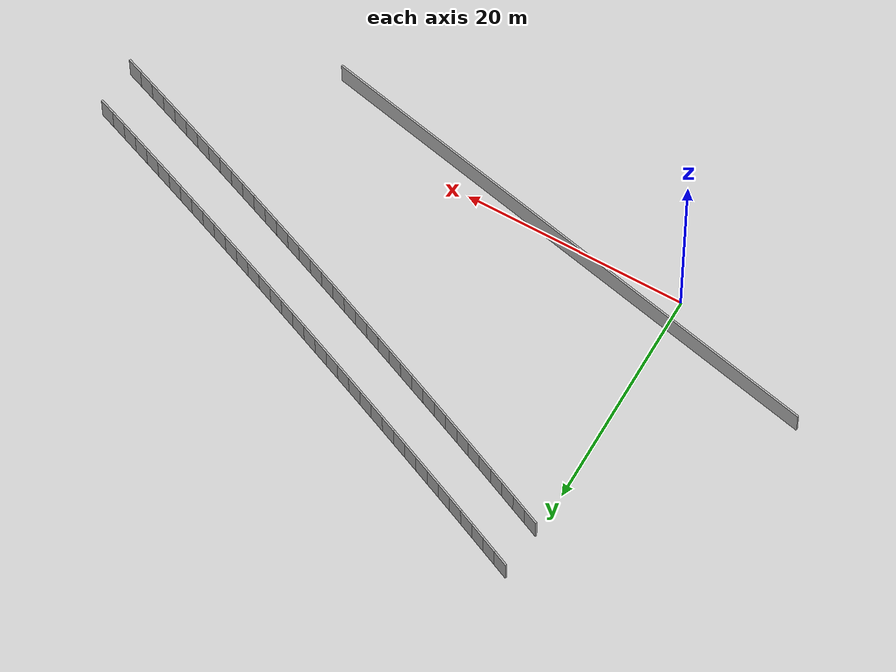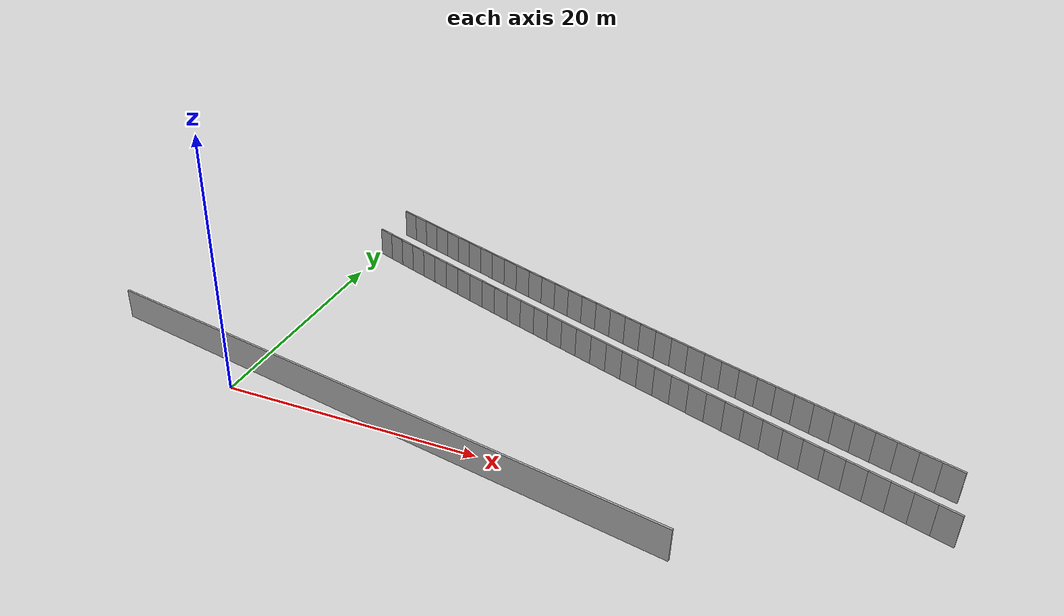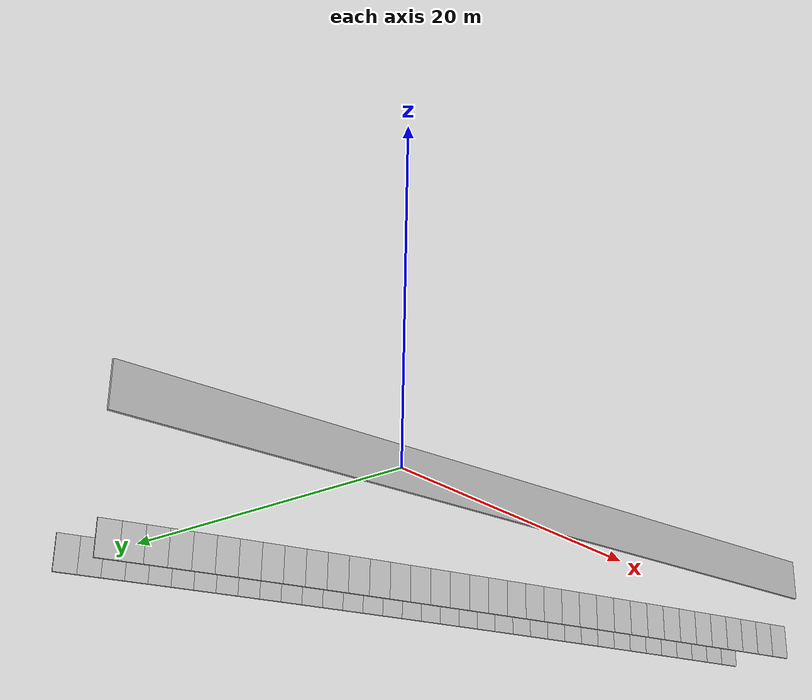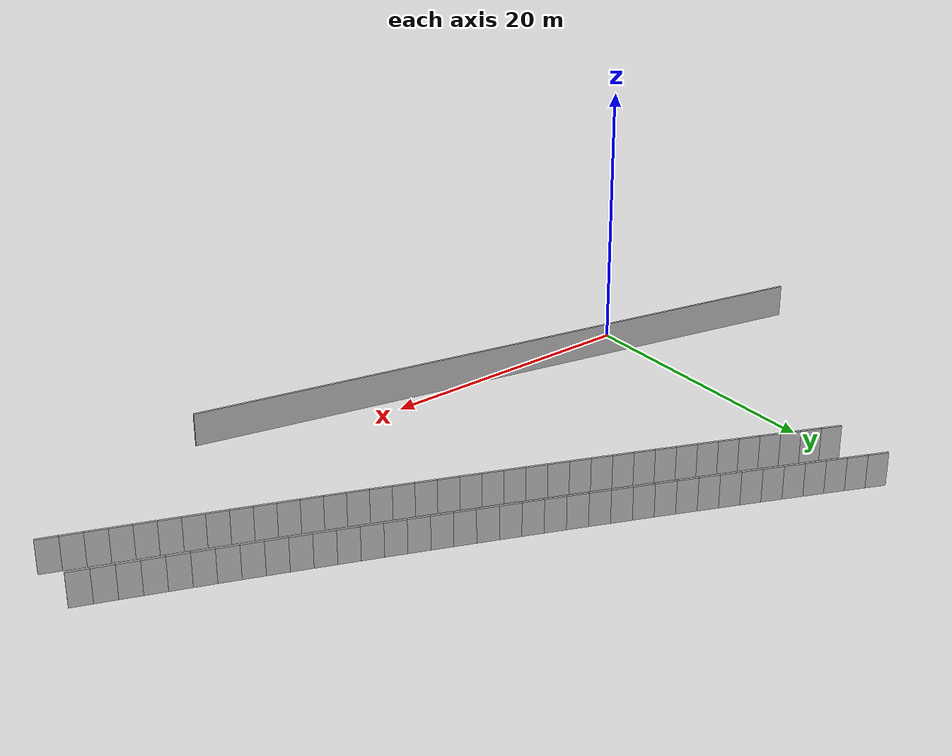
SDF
<?xml version="1.0" ?>
<sdf version="1.6">
  <model name="sps_1505">
    <pose frame="">0 0 0 0 -0 0</pose>
    <static>1</static>
    <self_collide>0</self_collide>
    <allow_auto_disable>0</allow_auto_disable>
    <link name="Wall610">
      <kinematic>0</kinematic>
      <gravity>1</gravity>
      <self_collide>0</self_collide>
      <collision name="collision">
        <geometry>
          <box>
            <size>49.1533 0.15 2.5</size>
          </box>
        </geometry>
        <pose frame="">0 0 0 0 -0 0</pose>
      </collision>
      <visual name="visual">
        <geometry>
          <box>
            <size>49.1533 0.15 2.5</size>
          </box>
        </geometry>
        <pose frame="">0 0 0 0 -0 0</pose>
        <cast_shadows>1</cast_shadows>
        <transparency>0.0</transparency>
      </visual>
      <pose frame="">10.3942 0.540443 1.25 0 -0 2.93924</pose>
    </link>
    <link name="Wall8747">
      <kinematic>0</kinematic>
      <gravity>1</gravity>
      <self_collide>0</self_collide>
      <collision name="collision">
        <geometry>
          <box>
            <size>1.49908 0.15 2.5</size>
          </box>
        </geometry>
        <pose frame="">0 0 0 0 -0 0</pose>
      </collision>
      <visual name="visual">
        <geometry>
          <box>
            <size>1.49908 0.15 2.5</size>
          </box>
        </geometry>
        <pose frame="">0 0 0 0 -0 0</pose>
        <cast_shadows>1</cast_shadows>
        <transparency>0.0</transparency>
      </visual>
      <pose frame="">0.754081 23.8405 1.25 0 0 -0.414702</pose>
    </link>
    <link name="Wall8748">
      <kinematic>0</kinematic>
      <gravity>1</gravity>
      <self_collide>0</self_collide>
      <collision name="collision">
        <geometry>
          <box>
            <size>1.49899 0.15 2.5</size>
          </box>
        </geometry>
        <pose frame="">0 0 0 0 -0 0</pose>
      </collision>
      <visual name="visual">
        <geometry>
          <box>
            <size>1.49899 0.15 2.5</size>
          </box>
        </geometry>
        <pose frame="">0 0 0 0 -0 0</pose>
        <cast_shadows>1</cast_shadows>
        <transparency>0.0</transparency>
      </visual>
      <pose frame="">2.12658 23.2377 1.25 0 0 -0.412949</pose>
    </link>
    <link name="Wall8749">
      <kinematic>0</kinematic>
      <gravity>1</gravity>
      <self_collide>0</self_collide>
      <collision name="collision">
        <geometry>
          <box>
            <size>1.49893 0.15 2.5</size>
          </box>
        </geometry>
        <pose frame="">0 0 0 0 -0 0</pose>
      </collision>
      <visual name="visual">
        <geometry>
          <box>
            <size>1.49893 0.15 2.5</size>
          </box>
        </geometry>
        <pose frame="">0 0 0 0 -0 0</pose>
        <cast_shadows>1</cast_shadows>
        <transparency>0.0</transparency>
      </visual>
      <pose frame="">3.49996 22.6371 1.25 0 0 -0.411543</pose>
    </link>
    <link name="Wall8750">
      <kinematic>0</kinematic>
      <gravity>1</gravity>
      <self_collide>0</self_collide>
      <collision name="collision">
        <geometry>
          <box>
            <size>1.49901 0.15 2.5</size>
          </box>
        </geometry>
        <pose frame="">0 0 0 0 -0 0</pose>
      </collision>
      <visual name="visual">
        <geometry>
          <box>
            <size>1.49901 0.15 2.5</size>
          </box>
        </geometry>
        <pose frame="">0 0 0 0 -0 0</pose>
        <cast_shadows>1</cast_shadows>
        <transparency>0.0</transparency>
      </visual>
      <pose frame="">4.87426 22.0386 1.25 0 0 -0.409923</pose>
    </link>
    <link name="Wall8751">
      <kinematic>0</kinematic>
      <gravity>1</gravity>
      <self_collide>0</self_collide>
      <collision name="collision">
        <geometry>
          <box>
            <size>1.49903 0.15 2.5</size>
          </box>
        </geometry>
        <pose frame="">0 0 0 0 -0 0</pose>
      </collision>
      <visual name="visual">
        <geometry>
          <box>
            <size>1.49903 0.15 2.5</size>
          </box>
        </geometry>
        <pose frame="">0 0 0 0 -0 0</pose>
        <cast_shadows>1</cast_shadows>
        <transparency>0.0</transparency>
      </visual>
      <pose frame="">6.24956 21.4423 1.25 0 0 -0.408319</pose>
    </link>
    <link name="Wall8752">
      <kinematic>0</kinematic>
      <gravity>1</gravity>
      <self_collide>0</self_collide>
      <collision name="collision">
        <geometry>
          <box>
            <size>1.49886 0.15 2.5</size>
          </box>
        </geometry>
        <pose frame="">0 0 0 0 -0 0</pose>
      </collision>
      <visual name="visual">
        <geometry>
          <box>
            <size>1.49886 0.15 2.5</size>
          </box>
        </geometry>
        <pose frame="">0 0 0 0 -0 0</pose>
        <cast_shadows>1</cast_shadows>
        <transparency>0.0</transparency>
      </visual>
      <pose frame="">7.62575 20.8482 1.25 0 0 -0.406726</pose>
    </link>
    <link name="Wall8753">
      <kinematic>0</kinematic>
      <gravity>1</gravity>
      <self_collide>0</self_collide>
      <collision name="collision">
        <geometry>
          <box>
            <size>1.49897 0.15 2.5</size>
          </box>
        </geometry>
        <pose frame="">0 0 0 0 -0 0</pose>
      </collision>
      <visual name="visual">
        <geometry>
          <box>
            <size>1.49897 0.15 2.5</size>
          </box>
        </geometry>
        <pose frame="">0 0 0 0 -0 0</pose>
        <cast_shadows>1</cast_shadows>
        <transparency>0.0</transparency>
      </visual>
      <pose frame="">9.00286 20.2563 1.25 0 0 -0.405143</pose>
    </link>
    <link name="Wall8754">
      <kinematic>0</kinematic>
      <gravity>1</gravity>
      <self_collide>0</self_collide>
      <collision name="collision">
        <geometry>
          <box>
            <size>1.49878 0.15 2.5</size>
          </box>
        </geometry>
        <pose frame="">0 0 0 0 -0 0</pose>
      </collision>
      <visual name="visual">
        <geometry>
          <box>
            <size>1.49878 0.15 2.5</size>
          </box>
        </geometry>
        <pose frame="">0 0 0 0 -0 0</pose>
        <cast_shadows>1</cast_shadows>
        <transparency>0.0</transparency>
      </visual>
      <pose frame="">10.3809 19.6666 1.25 0 0 -0.403603</pose>
    </link>
    <link name="Wall8755">
      <kinematic>0</kinematic>
      <gravity>1</gravity>
      <self_collide>0</self_collide>
      <collision name="collision">
        <geometry>
          <box>
            <size>1.49891 0.15 2.5</size>
          </box>
        </geometry>
        <pose frame="">0 0 0 0 -0 0</pose>
      </collision>
      <visual name="visual">
        <geometry>
          <box>
            <size>1.49891 0.15 2.5</size>
          </box>
        </geometry>
        <pose frame="">0 0 0 0 -0 0</pose>
        <cast_shadows>1</cast_shadows>
        <transparency>0.0</transparency>
      </visual>
      <pose frame="">11.7598 19.0791 1.25 0 0 -0.40193</pose>
    </link>
    <link name="Wall8756">
      <kinematic>0</kinematic>
      <gravity>1</gravity>
      <self_collide>0</self_collide>
      <collision name="collision">
        <geometry>
          <box>
            <size>1.49899 0.15 2.5</size>
          </box>
        </geometry>
        <pose frame="">0 0 0 0 -0 0</pose>
      </collision>
      <visual name="visual">
        <geometry>
          <box>
            <size>1.49899 0.15 2.5</size>
          </box>
        </geometry>
        <pose frame="">0 0 0 0 -0 0</pose>
        <cast_shadows>1</cast_shadows>
        <transparency>0.0</transparency>
      </visual>
      <pose frame="">13.1397 18.4937 1.25 0 0 -0.400492</pose>
    </link>
    <link name="Wall8757">
      <kinematic>0</kinematic>
      <gravity>1</gravity>
      <self_collide>0</self_collide>
      <collision name="collision">
        <geometry>
          <box>
            <size>1.49899 0.15 2.5</size>
          </box>
        </geometry>
        <pose frame="">0 0 0 0 -0 0</pose>
      </collision>
      <visual name="visual">
        <geometry>
          <box>
            <size>1.49899 0.15 2.5</size>
          </box>
        </geometry>
        <pose frame="">0 0 0 0 -0 0</pose>
        <cast_shadows>1</cast_shadows>
        <transparency>0.0</transparency>
      </visual>
      <pose frame="">14.5206 17.9105 1.25 0 0 -0.398722</pose>
    </link>
    <link name="Wall8758">
      <kinematic>0</kinematic>
      <gravity>1</gravity>
      <self_collide>0</self_collide>
      <collision name="collision">
        <geometry>
          <box>
            <size>1.49897 0.15 2.5</size>
          </box>
        </geometry>
        <pose frame="">0 0 0 0 -0 0</pose>
      </collision>
      <visual name="visual">
        <geometry>
          <box>
            <size>1.49897 0.15 2.5</size>
          </box>
        </geometry>
        <pose frame="">0 0 0 0 -0 0</pose>
        <cast_shadows>1</cast_shadows>
        <transparency>0.0</transparency>
      </visual>
      <pose frame="">15.9024 17.3295 1.25 0 0 -0.397316</pose>
    </link>
    <link name="Wall8759">
      <kinematic>0</kinematic>
      <gravity>1</gravity>
      <self_collide>0</self_collide>
      <collision name="collision">
        <geometry>
          <box>
            <size>1.49895 0.15 2.5</size>
          </box>
        </geometry>
        <pose frame="">0 0 0 0 -0 0</pose>
      </collision>
      <visual name="visual">
        <geometry>
          <box>
            <size>1.49895 0.15 2.5</size>
          </box>
        </geometry>
        <pose frame="">0 0 0 0 -0 0</pose>
        <cast_shadows>1</cast_shadows>
        <transparency>0.0</transparency>
      </visual>
      <pose frame="">17.2851 16.7507 1.25 0 0 -0.395599</pose>
    </link>
    <link name="Wall8760">
      <kinematic>0</kinematic>
      <gravity>1</gravity>
      <self_collide>0</self_collide>
      <collision name="collision">
        <geometry>
          <box>
            <size>1.49901 0.15 2.5</size>
          </box>
        </geometry>
        <pose frame="">0 0 0 0 -0 0</pose>
      </collision>
      <visual name="visual">
        <geometry>
          <box>
            <size>1.49901 0.15 2.5</size>
          </box>
        </geometry>
        <pose frame="">0 0 0 0 -0 0</pose>
        <cast_shadows>1</cast_shadows>
        <transparency>0.0</transparency>
      </visual>
      <pose frame="">18.6687 16.174 1.25 0 0 -0.394215</pose>
    </link>
    <link name="Wall8761">
      <kinematic>0</kinematic>
      <gravity>1</gravity>
      <self_collide>0</self_collide>
      <collision name="collision">
        <geometry>
          <box>
            <size>1.4989 0.15 2.5</size>
          </box>
        </geometry>
        <pose frame="">0 0 0 0 -0 0</pose>
      </collision>
      <visual name="visual">
        <geometry>
          <box>
            <size>1.4989 0.15 2.5</size>
          </box>
        </geometry>
        <pose frame="">0 0 0 0 -0 0</pose>
        <cast_shadows>1</cast_shadows>
        <transparency>0.0</transparency>
      </visual>
      <pose frame="">20.0532 15.5995 1.25 0 0 -0.392439</pose>
    </link>
    <link name="Wall8762">
      <kinematic>0</kinematic>
      <gravity>1</gravity>
      <self_collide>0</self_collide>
      <collision name="collision">
        <geometry>
          <box>
            <size>1.49899 0.15 2.5</size>
          </box>
        </geometry>
        <pose frame="">0 0 0 0 -0 0</pose>
      </collision>
      <visual name="visual">
        <geometry>
          <box>
            <size>1.49899 0.15 2.5</size>
          </box>
        </geometry>
        <pose frame="">0 0 0 0 -0 0</pose>
        <cast_shadows>1</cast_shadows>
        <transparency>0.0</transparency>
      </visual>
      <pose frame="">21.4385 15.0272 1.25 0 0 -0.391092</pose>
    </link>
    <link name="Wall8763">
      <kinematic>0</kinematic>
      <gravity>1</gravity>
      <self_collide>0</self_collide>
      <collision name="collision">
        <geometry>
          <box>
            <size>1.49895 0.15 2.5</size>
          </box>
        </geometry>
        <pose frame="">0 0 0 0 -0 0</pose>
      </collision>
      <visual name="visual">
        <geometry>
          <box>
            <size>1.49895 0.15 2.5</size>
          </box>
        </geometry>
        <pose frame="">0 0 0 0 -0 0</pose>
        <cast_shadows>1</cast_shadows>
        <transparency>0.0</transparency>
      </visual>
      <pose frame="">22.8249 14.4571 1.25 0 0 -0.38921</pose>
    </link>
    <link name="Wall8764">
      <kinematic>0</kinematic>
      <gravity>1</gravity>
      <self_collide>0</self_collide>
      <collision name="collision">
        <geometry>
          <box>
            <size>1.49886 0.15 2.5</size>
          </box>
        </geometry>
        <pose frame="">0 0 0 0 -0 0</pose>
      </collision>
      <visual name="visual">
        <geometry>
          <box>
            <size>1.49886 0.15 2.5</size>
          </box>
        </geometry>
        <pose frame="">0 0 0 0 -0 0</pose>
        <cast_shadows>1</cast_shadows>
        <transparency>0.0</transparency>
      </visual>
      <pose frame="">24.2121 13.8893 1.25 0 0 -0.387781</pose>
    </link>
    <link name="Wall8765">
      <kinematic>0</kinematic>
      <gravity>1</gravity>
      <self_collide>0</self_collide>
      <collision name="collision">
        <geometry>
          <box>
            <size>1.49902 0.15 2.5</size>
          </box>
        </geometry>
        <pose frame="">0 0 0 0 -0 0</pose>
      </collision>
      <visual name="visual">
        <geometry>
          <box>
            <size>1.49902 0.15 2.5</size>
          </box>
        </geometry>
        <pose frame="">0 0 0 0 -0 0</pose>
        <cast_shadows>1</cast_shadows>
        <transparency>0.0</transparency>
      </visual>
      <pose frame="">25.6002 13.3236 1.25 0 0 -0.3862</pose>
    </link>
    <link name="Wall8766">
      <kinematic>0</kinematic>
      <gravity>1</gravity>
      <self_collide>0</self_collide>
      <collision name="collision">
        <geometry>
          <box>
            <size>1.4989 0.15 2.5</size>
          </box>
        </geometry>
        <pose frame="">0 0 0 0 -0 0</pose>
      </collision>
      <visual name="visual">
        <geometry>
          <box>
            <size>1.4989 0.15 2.5</size>
          </box>
        </geometry>
        <pose frame="">0 0 0 0 -0 0</pose>
        <cast_shadows>1</cast_shadows>
        <transparency>0.0</transparency>
      </visual>
      <pose frame="">26.9892 12.7601 1.25 0 0 -0.384605</pose>
    </link>
    <link name="Wall8767">
      <kinematic>0</kinematic>
      <gravity>1</gravity>
      <self_collide>0</self_collide>
      <collision name="collision">
        <geometry>
          <box>
            <size>1.49908 0.15 2.5</size>
          </box>
        </geometry>
        <pose frame="">0 0 0 0 -0 0</pose>
      </collision>
      <visual name="visual">
        <geometry>
          <box>
            <size>1.49908 0.15 2.5</size>
          </box>
        </geometry>
        <pose frame="">0 0 0 0 -0 0</pose>
        <cast_shadows>1</cast_shadows>
        <transparency>0.0</transparency>
      </visual>
      <pose frame="">28.3791 12.1987 1.25 0 0 -0.383153</pose>
    </link>
    <link name="Wall8768">
      <kinematic>0</kinematic>
      <gravity>1</gravity>
      <self_collide>0</self_collide>
      <collision name="collision">
        <geometry>
          <box>
            <size>1.49889 0.15 2.5</size>
          </box>
        </geometry>
        <pose frame="">0 0 0 0 -0 0</pose>
      </collision>
      <visual name="visual">
        <geometry>
          <box>
            <size>1.49889 0.15 2.5</size>
          </box>
        </geometry>
        <pose frame="">0 0 0 0 -0 0</pose>
        <cast_shadows>1</cast_shadows>
        <transparency>0.0</transparency>
      </visual>
      <pose frame="">29.7699 11.6396 1.25 0 0 -0.381315</pose>
    </link>
    <link name="Wall8769">
      <kinematic>0</kinematic>
      <gravity>1</gravity>
      <self_collide>0</self_collide>
      <collision name="collision">
        <geometry>
          <box>
            <size>1.49882 0.15 2.5</size>
          </box>
        </geometry>
        <pose frame="">0 0 0 0 -0 0</pose>
      </collision>
      <visual name="visual">
        <geometry>
          <box>
            <size>1.49882 0.15 2.5</size>
          </box>
        </geometry>
        <pose frame="">0 0 0 0 -0 0</pose>
        <cast_shadows>1</cast_shadows>
        <transparency>0.0</transparency>
      </visual>
      <pose frame="">31.1615 11.0828 1.25 0 0 -0.379886</pose>
    </link>
    <link name="Wall8770">
      <kinematic>0</kinematic>
      <gravity>1</gravity>
      <self_collide>0</self_collide>
      <collision name="collision">
        <geometry>
          <box>
            <size>1.49897 0.15 2.5</size>
          </box>
        </geometry>
        <pose frame="">0 0 0 0 -0 0</pose>
      </collision>
      <visual name="visual">
        <geometry>
          <box>
            <size>1.49897 0.15 2.5</size>
          </box>
        </geometry>
        <pose frame="">0 0 0 0 -0 0</pose>
        <cast_shadows>1</cast_shadows>
        <transparency>0.0</transparency>
      </visual>
      <pose frame="">32.5539 10.5281 1.25 0 0 -0.378268</pose>
    </link>
    <link name="Wall8771">
      <kinematic>0</kinematic>
      <gravity>1</gravity>
      <self_collide>0</self_collide>
      <collision name="collision">
        <geometry>
          <box>
            <size>1.49897 0.15 2.5</size>
          </box>
        </geometry>
        <pose frame="">0 0 0 0 -0 0</pose>
      </collision>
      <visual name="visual">
        <geometry>
          <box>
            <size>1.49897 0.15 2.5</size>
          </box>
        </geometry>
        <pose frame="">0 0 0 0 -0 0</pose>
        <cast_shadows>1</cast_shadows>
        <transparency>0.0</transparency>
      </visual>
      <pose frame="">33.9473 9.97551 1.25 0 0 -0.376824</pose>
    </link>
    <link name="Wall8772">
      <kinematic>0</kinematic>
      <gravity>1</gravity>
      <self_collide>0</self_collide>
      <collision name="collision">
        <geometry>
          <box>
            <size>1.49908 0.15 2.5</size>
          </box>
        </geometry>
        <pose frame="">0 0 0 0 -0 0</pose>
      </collision>
      <visual name="visual">
        <geometry>
          <box>
            <size>1.49908 0.15 2.5</size>
          </box>
        </geometry>
        <pose frame="">0 0 0 0 -0 0</pose>
        <cast_shadows>1</cast_shadows>
        <transparency>0.0</transparency>
      </visual>
      <pose frame="">35.3417 9.42509 1.25 0 0 -0.375131</pose>
    </link>
    <link name="Wall8773">
      <kinematic>0</kinematic>
      <gravity>1</gravity>
      <self_collide>0</self_collide>
      <collision name="collision">
        <geometry>
          <box>
            <size>1.49894 0.15 2.5</size>
          </box>
        </geometry>
        <pose frame="">0 0 0 0 -0 0</pose>
      </collision>
      <visual name="visual">
        <geometry>
          <box>
            <size>1.49894 0.15 2.5</size>
          </box>
        </geometry>
        <pose frame="">0 0 0 0 -0 0</pose>
        <cast_shadows>1</cast_shadows>
        <transparency>0.0</transparency>
      </visual>
      <pose frame="">36.7369 8.87697 1.25 0 0 -0.37355</pose>
    </link>
    <link name="Wall8774">
      <kinematic>0</kinematic>
      <gravity>1</gravity>
      <self_collide>0</self_collide>
      <collision name="collision">
        <geometry>
          <box>
            <size>1.49871 0.15 2.5</size>
          </box>
        </geometry>
        <pose frame="">0 0 0 0 -0 0</pose>
      </collision>
      <visual name="visual">
        <geometry>
          <box>
            <size>1.49871 0.15 2.5</size>
          </box>
        </geometry>
        <pose frame="">0 0 0 0 -0 0</pose>
        <cast_shadows>1</cast_shadows>
        <transparency>0.0</transparency>
      </visual>
      <pose frame="">38.1327 8.33107 1.25 0 0 -0.372036</pose>
    </link>
    <link name="Wall8775">
      <kinematic>0</kinematic>
      <gravity>1</gravity>
      <self_collide>0</self_collide>
      <collision name="collision">
        <geometry>
          <box>
            <size>1.49905 0.15 2.5</size>
          </box>
        </geometry>
        <pose frame="">0 0 0 0 -0 0</pose>
      </collision>
      <visual name="visual">
        <geometry>
          <box>
            <size>1.49905 0.15 2.5</size>
          </box>
        </geometry>
        <pose frame="">0 0 0 0 -0 0</pose>
        <cast_shadows>1</cast_shadows>
        <transparency>0.0</transparency>
      </visual>
      <pose frame="">39.5295 7.78737 1.25 0 0 -0.370375</pose>
    </link>
    <link name="Wall8776">
      <kinematic>0</kinematic>
      <gravity>1</gravity>
      <self_collide>0</self_collide>
      <collision name="collision">
        <geometry>
          <box>
            <size>1.4988 0.15 2.5</size>
          </box>
        </geometry>
        <pose frame="">0 0 0 0 -0 0</pose>
      </collision>
      <visual name="visual">
        <geometry>
          <box>
            <size>1.4988 0.15 2.5</size>
          </box>
        </geometry>
        <pose frame="">0 0 0 0 -0 0</pose>
        <cast_shadows>1</cast_shadows>
        <transparency>0.0</transparency>
      </visual>
      <pose frame="">40.9272 7.24589 1.25 0 0 -0.368823</pose>
    </link>
    <link name="Wall8777">
      <kinematic>0</kinematic>
      <gravity>1</gravity>
      <self_collide>0</self_collide>
      <collision name="collision">
        <geometry>
          <box>
            <size>1.49894 0.15 2.5</size>
          </box>
        </geometry>
        <pose frame="">0 0 0 0 -0 0</pose>
      </collision>
      <visual name="visual">
        <geometry>
          <box>
            <size>1.49894 0.15 2.5</size>
          </box>
        </geometry>
        <pose frame="">0 0 0 0 -0 0</pose>
        <cast_shadows>1</cast_shadows>
        <transparency>0.0</transparency>
      </visual>
      <pose frame="">42.3257 6.70662 1.25 0 0 -0.367259</pose>
    </link>
    <link name="Wall8778">
      <kinematic>0</kinematic>
      <gravity>1</gravity>
      <self_collide>0</self_collide>
      <collision name="collision">
        <geometry>
          <box>
            <size>1.49913 0.15 2.5</size>
          </box>
        </geometry>
        <pose frame="">0 0 0 0 -0 0</pose>
      </collision>
      <visual name="visual">
        <geometry>
          <box>
            <size>1.49913 0.15 2.5</size>
          </box>
        </geometry>
        <pose frame="">0 0 0 0 -0 0</pose>
        <cast_shadows>1</cast_shadows>
        <transparency>0.0</transparency>
      </visual>
      <pose frame="">43.7252 6.16951 1.25 0 0 -0.365642</pose>
    </link>
    <link name="Wall8779">
      <kinematic>0</kinematic>
      <gravity>1</gravity>
      <self_collide>0</self_collide>
      <collision name="collision">
        <geometry>
          <box>
            <size>1.49885 0.15 2.5</size>
          </box>
        </geometry>
        <pose frame="">0 0 0 0 -0 0</pose>
      </collision>
      <visual name="visual">
        <geometry>
          <box>
            <size>1.49885 0.15 2.5</size>
          </box>
        </geometry>
        <pose frame="">0 0 0 0 -0 0</pose>
        <cast_shadows>1</cast_shadows>
        <transparency>0.0</transparency>
      </visual>
      <pose frame="">45.1255 5.6346 1.25 0 0 -0.364142</pose>
    </link>
    <link name="Wall8780">
      <kinematic>0</kinematic>
      <gravity>1</gravity>
      <self_collide>0</self_collide>
      <collision name="collision">
        <geometry>
          <box>
            <size>1.49904 0.15 2.5</size>
          </box>
        </geometry>
        <pose frame="">0 0 0 0 -0 0</pose>
      </collision>
      <visual name="visual">
        <geometry>
          <box>
            <size>1.49904 0.15 2.5</size>
          </box>
        </geometry>
        <pose frame="">0 0 0 0 -0 0</pose>
        <cast_shadows>1</cast_shadows>
        <transparency>0.0</transparency>
      </visual>
      <pose frame="">46.5266 5.10188 1.25 0 0 -0.362526</pose>
    </link>
    <link name="Wall8781">
      <kinematic>0</kinematic>
      <gravity>1</gravity>
      <self_collide>0</self_collide>
      <collision name="collision">
        <geometry>
          <box>
            <size>1.49886 0.15 2.5</size>
          </box>
        </geometry>
        <pose frame="">0 0 0 0 -0 0</pose>
      </collision>
      <visual name="visual">
        <geometry>
          <box>
            <size>1.49886 0.15 2.5</size>
          </box>
        </geometry>
        <pose frame="">0 0 0 0 -0 0</pose>
        <cast_shadows>1</cast_shadows>
        <transparency>0.0</transparency>
      </visual>
      <pose frame="">47.9286 4.57158 1.25 0 0 -0.360701</pose>
    </link>
    <link name="Wall8782">
      <kinematic>0</kinematic>
      <gravity>1</gravity>
      <self_collide>0</self_collide>
      <collision name="collision">
        <geometry>
          <box>
            <size>1.49895 0.15 2.5</size>
          </box>
        </geometry>
        <pose frame="">0 0 0 0 -0 0</pose>
      </collision>
      <visual name="visual">
        <geometry>
          <box>
            <size>1.49895 0.15 2.5</size>
          </box>
        </geometry>
        <pose frame="">0 0 0 0 -0 0</pose>
        <cast_shadows>1</cast_shadows>
        <transparency>0.0</transparency>
      </visual>
      <pose frame="">49.3314 4.0435 1.25 0 0 -0.359371</pose>
    </link>
    <link name="Wall9827">
      <kinematic>0</kinematic>
      <gravity>1</gravity>
      <self_collide>0</self_collide>
      <collision name="collision">
        <geometry>
          <box>
            <size>1.49217 0.15 2.5</size>
          </box>
        </geometry>
        <pose frame="">0 0 0 0 -0 0</pose>
      </collision>
      <visual name="visual">
        <geometry>
          <box>
            <size>1.49217 0.15 2.5</size>
          </box>
        </geometry>
        <pose frame="">0 0 0 0 -0 0</pose>
        <cast_shadows>1</cast_shadows>
        <transparency>0.0</transparency>
      </visual>
      <pose frame="">1.05663 28.2323 1.25 0 0 -0.41616</pose>
    </link>
    <link name="Wall9828">
      <kinematic>0</kinematic>
      <gravity>1</gravity>
      <self_collide>0</self_collide>
      <collision name="collision">
        <geometry>
          <box>
            <size>1.49254 0.15 2.5</size>
          </box>
        </geometry>
        <pose frame="">0 0 0 0 -0 0</pose>
      </collision>
      <visual name="visual">
        <geometry>
          <box>
            <size>1.49254 0.15 2.5</size>
          </box>
        </geometry>
        <pose frame="">0 0 0 0 -0 0</pose>
        <cast_shadows>1</cast_shadows>
        <transparency>0.0</transparency>
      </visual>
      <pose frame="">2.42205 27.63 1.25 0 0 -0.414708</pose>
    </link>
    <link name="Wall9829">
      <kinematic>0</kinematic>
      <gravity>1</gravity>
      <self_collide>0</self_collide>
      <collision name="collision">
        <geometry>
          <box>
            <size>1.49231 0.15 2.5</size>
          </box>
        </geometry>
        <pose frame="">0 0 0 0 -0 0</pose>
      </collision>
      <visual name="visual">
        <geometry>
          <box>
            <size>1.49231 0.15 2.5</size>
          </box>
        </geometry>
        <pose frame="">0 0 0 0 -0 0</pose>
        <cast_shadows>1</cast_shadows>
        <transparency>0.0</transparency>
      </visual>
      <pose frame="">3.78847 27.0298 1.25 0 0 -0.413033</pose>
    </link>
    <link name="Wall9830">
      <kinematic>0</kinematic>
      <gravity>1</gravity>
      <self_collide>0</self_collide>
      <collision name="collision">
        <geometry>
          <box>
            <size>1.4924 0.15 2.5</size>
          </box>
        </geometry>
        <pose frame="">0 0 0 0 -0 0</pose>
      </collision>
      <visual name="visual">
        <geometry>
          <box>
            <size>1.4924 0.15 2.5</size>
          </box>
        </geometry>
        <pose frame="">0 0 0 0 -0 0</pose>
        <cast_shadows>1</cast_shadows>
        <transparency>0.0</transparency>
      </visual>
      <pose frame="">5.15578 26.4318 1.25 0 0 -0.411535</pose>
    </link>
    <link name="Wall9831">
      <kinematic>0</kinematic>
      <gravity>1</gravity>
      <self_collide>0</self_collide>
      <collision name="collision">
        <geometry>
          <box>
            <size>1.49244 0.15 2.5</size>
          </box>
        </geometry>
        <pose frame="">0 0 0 0 -0 0</pose>
      </collision>
      <visual name="visual">
        <geometry>
          <box>
            <size>1.49244 0.15 2.5</size>
          </box>
        </geometry>
        <pose frame="">0 0 0 0 -0 0</pose>
        <cast_shadows>1</cast_shadows>
        <transparency>0.0</transparency>
      </visual>
      <pose frame="">6.52407 25.8359 1.25 0 0 -0.409961</pose>
    </link>
    <link name="Wall9832">
      <kinematic>0</kinematic>
      <gravity>1</gravity>
      <self_collide>0</self_collide>
      <collision name="collision">
        <geometry>
          <box>
            <size>1.4925 0.15 2.5</size>
          </box>
        </geometry>
        <pose frame="">0 0 0 0 -0 0</pose>
      </collision>
      <visual name="visual">
        <geometry>
          <box>
            <size>1.4925 0.15 2.5</size>
          </box>
        </geometry>
        <pose frame="">0 0 0 0 -0 0</pose>
        <cast_shadows>1</cast_shadows>
        <transparency>0.0</transparency>
      </visual>
      <pose frame="">7.89336 25.2422 1.25 0 0 -0.408296</pose>
    </link>
    <link name="Wall9833">
      <kinematic>0</kinematic>
      <gravity>1</gravity>
      <self_collide>0</self_collide>
      <collision name="collision">
        <geometry>
          <box>
            <size>1.49228 0.15 2.5</size>
          </box>
        </geometry>
        <pose frame="">0 0 0 0 -0 0</pose>
      </collision>
      <visual name="visual">
        <geometry>
          <box>
            <size>1.49228 0.15 2.5</size>
          </box>
        </geometry>
        <pose frame="">0 0 0 0 -0 0</pose>
        <cast_shadows>1</cast_shadows>
        <transparency>0.0</transparency>
      </visual>
      <pose frame="">9.26357 24.6508 1.25 0 0 -0.406621</pose>
    </link>
    <link name="Wall9834">
      <kinematic>0</kinematic>
      <gravity>1</gravity>
      <self_collide>0</self_collide>
      <collision name="collision">
        <geometry>
          <box>
            <size>1.49246 0.15 2.5</size>
          </box>
        </geometry>
        <pose frame="">0 0 0 0 -0 0</pose>
      </collision>
      <visual name="visual">
        <geometry>
          <box>
            <size>1.49246 0.15 2.5</size>
          </box>
        </geometry>
        <pose frame="">0 0 0 0 -0 0</pose>
        <cast_shadows>1</cast_shadows>
        <transparency>0.0</transparency>
      </visual>
      <pose frame="">10.6347 24.0615 1.25 0 0 -0.405235</pose>
    </link>
    <link name="Wall9835">
      <kinematic>0</kinematic>
      <gravity>1</gravity>
      <self_collide>0</self_collide>
      <collision name="collision">
        <geometry>
          <box>
            <size>1.49255 0.15 2.5</size>
          </box>
        </geometry>
        <pose frame="">0 0 0 0 -0 0</pose>
      </collision>
      <visual name="visual">
        <geometry>
          <box>
            <size>1.49255 0.15 2.5</size>
          </box>
        </geometry>
        <pose frame="">0 0 0 0 -0 0</pose>
        <cast_shadows>1</cast_shadows>
        <transparency>0.0</transparency>
      </visual>
      <pose frame="">12.0068 23.4742 1.25 0 0 -0.403608</pose>
    </link>
    <link name="Wall9836">
      <kinematic>0</kinematic>
      <gravity>1</gravity>
      <self_collide>0</self_collide>
      <collision name="collision">
        <geometry>
          <box>
            <size>1.49229 0.15 2.5</size>
          </box>
        </geometry>
        <pose frame="">0 0 0 0 -0 0</pose>
      </collision>
      <visual name="visual">
        <geometry>
          <box>
            <size>1.49229 0.15 2.5</size>
          </box>
        </geometry>
        <pose frame="">0 0 0 0 -0 0</pose>
        <cast_shadows>1</cast_shadows>
        <transparency>0.0</transparency>
      </visual>
      <pose frame="">13.3798 22.8892 1.25 0 0 -0.401949</pose>
    </link>
    <link name="Wall9837">
      <kinematic>0</kinematic>
      <gravity>1</gravity>
      <self_collide>0</self_collide>
      <collision name="collision">
        <geometry>
          <box>
            <size>1.49229 0.15 2.5</size>
          </box>
        </geometry>
        <pose frame="">0 0 0 0 -0 0</pose>
      </collision>
      <visual name="visual">
        <geometry>
          <box>
            <size>1.49229 0.15 2.5</size>
          </box>
        </geometry>
        <pose frame="">0 0 0 0 -0 0</pose>
        <cast_shadows>1</cast_shadows>
        <transparency>0.0</transparency>
      </visual>
      <pose frame="">14.7535 22.3064 1.25 0 0 -0.400483</pose>
    </link>
    <link name="Wall9838">
      <kinematic>0</kinematic>
      <gravity>1</gravity>
      <self_collide>0</self_collide>
      <collision name="collision">
        <geometry>
          <box>
            <size>1.49258 0.15 2.5</size>
          </box>
        </geometry>
        <pose frame="">0 0 0 0 -0 0</pose>
      </collision>
      <visual name="visual">
        <geometry>
          <box>
            <size>1.49258 0.15 2.5</size>
          </box>
        </geometry>
        <pose frame="">0 0 0 0 -0 0</pose>
        <cast_shadows>1</cast_shadows>
        <transparency>0.0</transparency>
      </visual>
      <pose frame="">16.1283 21.7257 1.25 0 0 -0.398846</pose>
    </link>
    <link name="Wall9839">
      <kinematic>0</kinematic>
      <gravity>1</gravity>
      <self_collide>0</self_collide>
      <collision name="collision">
        <geometry>
          <box>
            <size>1.49221 0.15 2.5</size>
          </box>
        </geometry>
        <pose frame="">0 0 0 0 -0 0</pose>
      </collision>
      <visual name="visual">
        <geometry>
          <box>
            <size>1.49221 0.15 2.5</size>
          </box>
        </geometry>
        <pose frame="">0 0 0 0 -0 0</pose>
        <cast_shadows>1</cast_shadows>
        <transparency>0.0</transparency>
      </visual>
      <pose frame="">17.5041 21.1472 1.25 0 0 -0.397308</pose>
    </link>
    <link name="Wall9840">
      <kinematic>0</kinematic>
      <gravity>1</gravity>
      <self_collide>0</self_collide>
      <collision name="collision">
        <geometry>
          <box>
            <size>1.49249 0.15 2.5</size>
          </box>
        </geometry>
        <pose frame="">0 0 0 0 -0 0</pose>
      </collision>
      <visual name="visual">
        <geometry>
          <box>
            <size>1.49249 0.15 2.5</size>
          </box>
        </geometry>
        <pose frame="">0 0 0 0 -0 0</pose>
        <cast_shadows>1</cast_shadows>
        <transparency>0.0</transparency>
      </visual>
      <pose frame="">18.8806 20.5709 1.25 0 0 -0.395634</pose>
    </link>
    <link name="Wall9841">
      <kinematic>0</kinematic>
      <gravity>1</gravity>
      <self_collide>0</self_collide>
      <collision name="collision">
        <geometry>
          <box>
            <size>1.49238 0.15 2.5</size>
          </box>
        </geometry>
        <pose frame="">0 0 0 0 -0 0</pose>
      </collision>
      <visual name="visual">
        <geometry>
          <box>
            <size>1.49238 0.15 2.5</size>
          </box>
        </geometry>
        <pose frame="">0 0 0 0 -0 0</pose>
        <cast_shadows>1</cast_shadows>
        <transparency>0.0</transparency>
      </visual>
      <pose frame="">20.2582 19.9968 1.25 0 0 -0.394071</pose>
    </link>
    <link name="Wall9842">
      <kinematic>0</kinematic>
      <gravity>1</gravity>
      <self_collide>0</self_collide>
      <collision name="collision">
        <geometry>
          <box>
            <size>1.49232 0.15 2.5</size>
          </box>
        </geometry>
        <pose frame="">0 0 0 0 -0 0</pose>
      </collision>
      <visual name="visual">
        <geometry>
          <box>
            <size>1.49232 0.15 2.5</size>
          </box>
        </geometry>
        <pose frame="">0 0 0 0 -0 0</pose>
        <cast_shadows>1</cast_shadows>
        <transparency>0.0</transparency>
      </visual>
      <pose frame="">21.6366 19.4249 1.25 0 0 -0.392491</pose>
    </link>
    <link name="Wall9843">
      <kinematic>0</kinematic>
      <gravity>1</gravity>
      <self_collide>0</self_collide>
      <collision name="collision">
        <geometry>
          <box>
            <size>1.4924 0.15 2.5</size>
          </box>
        </geometry>
        <pose frame="">0 0 0 0 -0 0</pose>
      </collision>
      <visual name="visual">
        <geometry>
          <box>
            <size>1.4924 0.15 2.5</size>
          </box>
        </geometry>
        <pose frame="">0 0 0 0 -0 0</pose>
        <cast_shadows>1</cast_shadows>
        <transparency>0.0</transparency>
      </visual>
      <pose frame="">23.016 18.8551 1.25 0 0 -0.39101</pose>
    </link>
    <link name="Wall9844">
      <kinematic>0</kinematic>
      <gravity>1</gravity>
      <self_collide>0</self_collide>
      <collision name="collision">
        <geometry>
          <box>
            <size>1.49245 0.15 2.5</size>
          </box>
        </geometry>
        <pose frame="">0 0 0 0 -0 0</pose>
      </collision>
      <visual name="visual">
        <geometry>
          <box>
            <size>1.49245 0.15 2.5</size>
          </box>
        </geometry>
        <pose frame="">0 0 0 0 -0 0</pose>
        <cast_shadows>1</cast_shadows>
        <transparency>0.0</transparency>
      </visual>
      <pose frame="">24.3962 18.2875 1.25 0 0 -0.38927</pose>
    </link>
    <link name="Wall9845">
      <kinematic>0</kinematic>
      <gravity>1</gravity>
      <self_collide>0</self_collide>
      <collision name="collision">
        <geometry>
          <box>
            <size>1.49248 0.15 2.5</size>
          </box>
        </geometry>
        <pose frame="">0 0 0 0 -0 0</pose>
      </collision>
      <visual name="visual">
        <geometry>
          <box>
            <size>1.49248 0.15 2.5</size>
          </box>
        </geometry>
        <pose frame="">0 0 0 0 -0 0</pose>
        <cast_shadows>1</cast_shadows>
        <transparency>0.0</transparency>
      </visual>
      <pose frame="">25.7775 17.7221 1.25 0 0 -0.387804</pose>
    </link>
    <link name="Wall9846">
      <kinematic>0</kinematic>
      <gravity>1</gravity>
      <self_collide>0</self_collide>
      <collision name="collision">
        <geometry>
          <box>
            <size>1.4925 0.15 2.5</size>
          </box>
        </geometry>
        <pose frame="">0 0 0 0 -0 0</pose>
      </collision>
      <visual name="visual">
        <geometry>
          <box>
            <size>1.4925 0.15 2.5</size>
          </box>
        </geometry>
        <pose frame="">0 0 0 0 -0 0</pose>
        <cast_shadows>1</cast_shadows>
        <transparency>0.0</transparency>
      </visual>
      <pose frame="">27.1596 17.1588 1.25 0 0 -0.386209</pose>
    </link>
    <link name="Wall9847">
      <kinematic>0</kinematic>
      <gravity>1</gravity>
      <self_collide>0</self_collide>
      <collision name="collision">
        <geometry>
          <box>
            <size>1.49224 0.15 2.5</size>
          </box>
        </geometry>
        <pose frame="">0 0 0 0 -0 0</pose>
      </collision>
      <visual name="visual">
        <geometry>
          <box>
            <size>1.49224 0.15 2.5</size>
          </box>
        </geometry>
        <pose frame="">0 0 0 0 -0 0</pose>
        <cast_shadows>1</cast_shadows>
        <transparency>0.0</transparency>
      </visual>
      <pose frame="">28.5424 16.5977 1.25 0 0 -0.384691</pose>
    </link>
    <link name="Wall9848">
      <kinematic>0</kinematic>
      <gravity>1</gravity>
      <self_collide>0</self_collide>
      <collision name="collision">
        <geometry>
          <box>
            <size>1.49255 0.15 2.5</size>
          </box>
        </geometry>
        <pose frame="">0 0 0 0 -0 0</pose>
      </collision>
      <visual name="visual">
        <geometry>
          <box>
            <size>1.49255 0.15 2.5</size>
          </box>
        </geometry>
        <pose frame="">0 0 0 0 -0 0</pose>
        <cast_shadows>1</cast_shadows>
        <transparency>0.0</transparency>
      </visual>
      <pose frame="">29.9262 16.0388 1.25 0 0 -0.38302</pose>
    </link>
    <link name="Wall9849">
      <kinematic>0</kinematic>
      <gravity>1</gravity>
      <self_collide>0</self_collide>
      <collision name="collision">
        <geometry>
          <box>
            <size>1.4923 0.15 2.5</size>
          </box>
        </geometry>
        <pose frame="">0 0 0 0 -0 0</pose>
      </collision>
      <visual name="visual">
        <geometry>
          <box>
            <size>1.4923 0.15 2.5</size>
          </box>
        </geometry>
        <pose frame="">0 0 0 0 -0 0</pose>
        <cast_shadows>1</cast_shadows>
        <transparency>0.0</transparency>
      </visual>
      <pose frame="">31.3109 15.4821 1.25 0 0 -0.381501</pose>
    </link>
    <link name="Wall9850">
      <kinematic>0</kinematic>
      <gravity>1</gravity>
      <self_collide>0</self_collide>
      <collision name="collision">
        <geometry>
          <box>
            <size>1.49254 0.15 2.5</size>
          </box>
        </geometry>
        <pose frame="">0 0 0 0 -0 0</pose>
      </collision>
      <visual name="visual">
        <geometry>
          <box>
            <size>1.49254 0.15 2.5</size>
          </box>
        </geometry>
        <pose frame="">0 0 0 0 -0 0</pose>
        <cast_shadows>1</cast_shadows>
        <transparency>0.0</transparency>
      </visual>
      <pose frame="">32.6966 14.9277 1.25 0 0 -0.379717</pose>
    </link>
    <link name="Wall9851">
      <kinematic>0</kinematic>
      <gravity>1</gravity>
      <self_collide>0</self_collide>
      <collision name="collision">
        <geometry>
          <box>
            <size>1.49231 0.15 2.5</size>
          </box>
        </geometry>
        <pose frame="">0 0 0 0 -0 0</pose>
      </collision>
      <visual name="visual">
        <geometry>
          <box>
            <size>1.49231 0.15 2.5</size>
          </box>
        </geometry>
        <pose frame="">0 0 0 0 -0 0</pose>
        <cast_shadows>1</cast_shadows>
        <transparency>0.0</transparency>
      </visual>
      <pose frame="">34.0831 14.3755 1.25 0 0 -0.378327</pose>
    </link>
    <link name="Wall9852">
      <kinematic>0</kinematic>
      <gravity>1</gravity>
      <self_collide>0</self_collide>
      <collision name="collision">
        <geometry>
          <box>
            <size>1.49244 0.15 2.5</size>
          </box>
        </geometry>
        <pose frame="">0 0 0 0 -0 0</pose>
      </collision>
      <visual name="visual">
        <geometry>
          <box>
            <size>1.49244 0.15 2.5</size>
          </box>
        </geometry>
        <pose frame="">0 0 0 0 -0 0</pose>
        <cast_shadows>1</cast_shadows>
        <transparency>0.0</transparency>
      </visual>
      <pose frame="">35.4704 13.8254 1.25 0 0 -0.376664</pose>
    </link>
    <link name="Wall9853">
      <kinematic>0</kinematic>
      <gravity>1</gravity>
      <self_collide>0</self_collide>
      <collision name="collision">
        <geometry>
          <box>
            <size>1.49246 0.15 2.5</size>
          </box>
        </geometry>
        <pose frame="">0 0 0 0 -0 0</pose>
      </collision>
      <visual name="visual">
        <geometry>
          <box>
            <size>1.49246 0.15 2.5</size>
          </box>
        </geometry>
        <pose frame="">0 0 0 0 -0 0</pose>
        <cast_shadows>1</cast_shadows>
        <transparency>0.0</transparency>
      </visual>
      <pose frame="">36.8586 13.2774 1.25 0 0 -0.375251</pose>
    </link>
    <link name="Wall9854">
      <kinematic>0</kinematic>
      <gravity>1</gravity>
      <self_collide>0</self_collide>
      <collision name="collision">
        <geometry>
          <box>
            <size>1.49233 0.15 2.5</size>
          </box>
        </geometry>
        <pose frame="">0 0 0 0 -0 0</pose>
      </collision>
      <visual name="visual">
        <geometry>
          <box>
            <size>1.49233 0.15 2.5</size>
          </box>
        </geometry>
        <pose frame="">0 0 0 0 -0 0</pose>
        <cast_shadows>1</cast_shadows>
        <transparency>0.0</transparency>
      </visual>
      <pose frame="">38.2476 12.7316 1.25 0 0 -0.373572</pose>
    </link>
    <link name="Wall9855">
      <kinematic>0</kinematic>
      <gravity>1</gravity>
      <self_collide>0</self_collide>
      <collision name="collision">
        <geometry>
          <box>
            <size>1.49244 0.15 2.5</size>
          </box>
        </geometry>
        <pose frame="">0 0 0 0 -0 0</pose>
      </collision>
      <visual name="visual">
        <geometry>
          <box>
            <size>1.49244 0.15 2.5</size>
          </box>
        </geometry>
        <pose frame="">0 0 0 0 -0 0</pose>
        <cast_shadows>1</cast_shadows>
        <transparency>0.0</transparency>
      </visual>
      <pose frame="">39.6375 12.1881 1.25 0 0 -0.371963</pose>
    </link>
    <link name="Wall9856">
      <kinematic>0</kinematic>
      <gravity>1</gravity>
      <self_collide>0</self_collide>
      <collision name="collision">
        <geometry>
          <box>
            <size>1.49236 0.15 2.5</size>
          </box>
        </geometry>
        <pose frame="">0 0 0 0 -0 0</pose>
      </collision>
      <visual name="visual">
        <geometry>
          <box>
            <size>1.49236 0.15 2.5</size>
          </box>
        </geometry>
        <pose frame="">0 0 0 0 -0 0</pose>
        <cast_shadows>1</cast_shadows>
        <transparency>0.0</transparency>
      </visual>
      <pose frame="">41.0283 11.6468 1.25 0 0 -0.37036</pose>
    </link>
    <link name="Wall9857">
      <kinematic>0</kinematic>
      <gravity>1</gravity>
      <self_collide>0</self_collide>
      <collision name="collision">
        <geometry>
          <box>
            <size>1.49256 0.15 2.5</size>
          </box>
        </geometry>
        <pose frame="">0 0 0 0 -0 0</pose>
      </collision>
      <visual name="visual">
        <geometry>
          <box>
            <size>1.49256 0.15 2.5</size>
          </box>
        </geometry>
        <pose frame="">0 0 0 0 -0 0</pose>
        <cast_shadows>1</cast_shadows>
        <transparency>0.0</transparency>
      </visual>
      <pose frame="">42.4199 11.1077 1.25 0 0 -0.368774</pose>
    </link>
    <link name="Wall9858">
      <kinematic>0</kinematic>
      <gravity>1</gravity>
      <self_collide>0</self_collide>
      <collision name="collision">
        <geometry>
          <box>
            <size>1.49234 0.15 2.5</size>
          </box>
        </geometry>
        <pose frame="">0 0 0 0 -0 0</pose>
      </collision>
      <visual name="visual">
        <geometry>
          <box>
            <size>1.49234 0.15 2.5</size>
          </box>
        </geometry>
        <pose frame="">0 0 0 0 -0 0</pose>
        <cast_shadows>1</cast_shadows>
        <transparency>0.0</transparency>
      </visual>
      <pose frame="">43.8125 10.5708 1.25 0 0 -0.367253</pose>
    </link>
    <link name="Wall9859">
      <kinematic>0</kinematic>
      <gravity>1</gravity>
      <self_collide>0</self_collide>
      <collision name="collision">
        <geometry>
          <box>
            <size>1.49228 0.15 2.5</size>
          </box>
        </geometry>
        <pose frame="">0 0 0 0 -0 0</pose>
      </collision>
      <visual name="visual">
        <geometry>
          <box>
            <size>1.49228 0.15 2.5</size>
          </box>
        </geometry>
        <pose frame="">0 0 0 0 -0 0</pose>
        <cast_shadows>1</cast_shadows>
        <transparency>0.0</transparency>
      </visual>
      <pose frame="">45.2056 10.036 1.25 0 0 -0.365779</pose>
    </link>
    <link name="Wall9860">
      <kinematic>0</kinematic>
      <gravity>1</gravity>
      <self_collide>0</self_collide>
      <collision name="collision">
        <geometry>
          <box>
            <size>1.49247 0.15 2.5</size>
          </box>
        </geometry>
        <pose frame="">0 0 0 0 -0 0</pose>
      </collision>
      <visual name="visual">
        <geometry>
          <box>
            <size>1.49247 0.15 2.5</size>
          </box>
        </geometry>
        <pose frame="">0 0 0 0 -0 0</pose>
        <cast_shadows>1</cast_shadows>
        <transparency>0.0</transparency>
      </visual>
      <pose frame="">46.5998 9.5034 1.25 0 0 -0.364064</pose>
    </link>
    <link name="Wall9861">
      <kinematic>0</kinematic>
      <gravity>1</gravity>
      <self_collide>0</self_collide>
      <collision name="collision">
        <geometry>
          <box>
            <size>1.49229 0.15 2.5</size>
          </box>
        </geometry>
        <pose frame="">0 0 0 0 -0 0</pose>
      </collision>
      <visual name="visual">
        <geometry>
          <box>
            <size>1.49229 0.15 2.5</size>
          </box>
        </geometry>
        <pose frame="">0 0 0 0 -0 0</pose>
        <cast_shadows>1</cast_shadows>
        <transparency>0.0</transparency>
      </visual>
      <pose frame="">47.9948 8.97319 1.25 0 0 -0.362361</pose>
    </link>
    <link name="Wall9862">
      <kinematic>0</kinematic>
      <gravity>1</gravity>
      <self_collide>0</self_collide>
      <collision name="collision">
        <geometry>
          <box>
            <size>1.49249 0.15 2.5</size>
          </box>
        </geometry>
        <pose frame="">0 0 0 0 -0 0</pose>
      </collision>
      <visual name="visual">
        <geometry>
          <box>
            <size>1.49249 0.15 2.5</size>
          </box>
        </geometry>
        <pose frame="">0 0 0 0 -0 0</pose>
        <cast_shadows>1</cast_shadows>
        <transparency>0.0</transparency>
      </visual>
      <pose frame="">49.3906 8.4452 1.25 0 0 -0.360867</pose>
    </link>
  </model>
</sdf>
